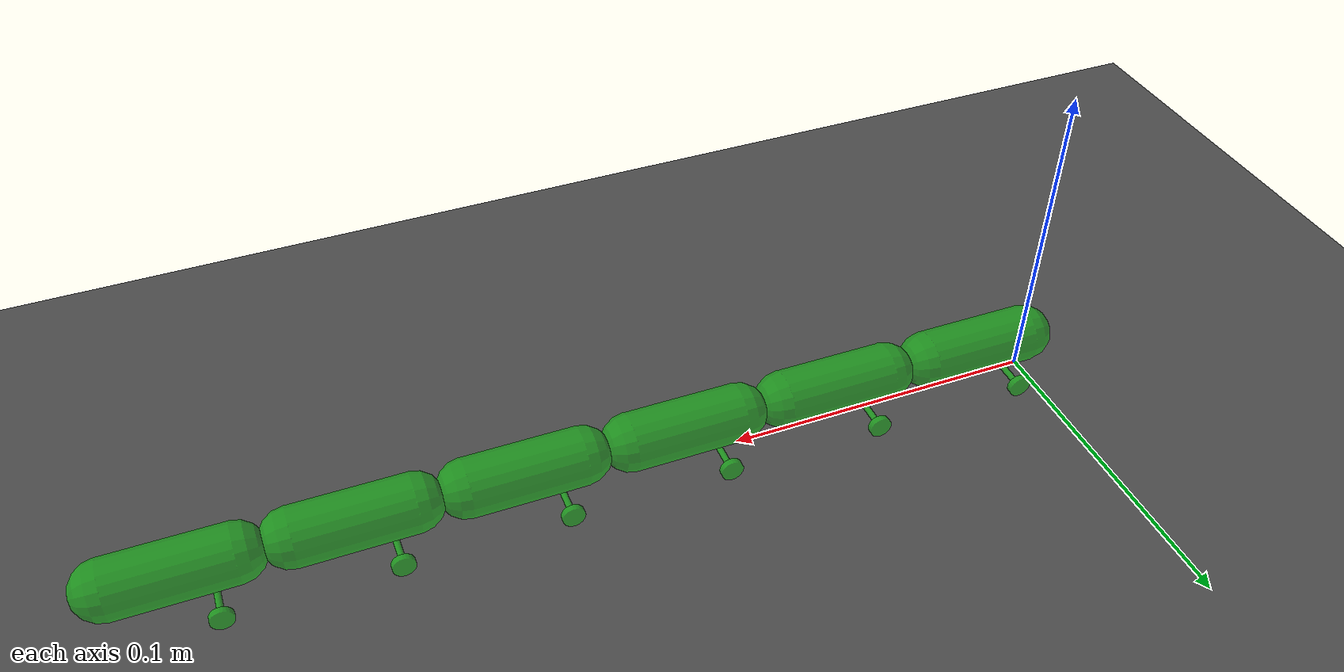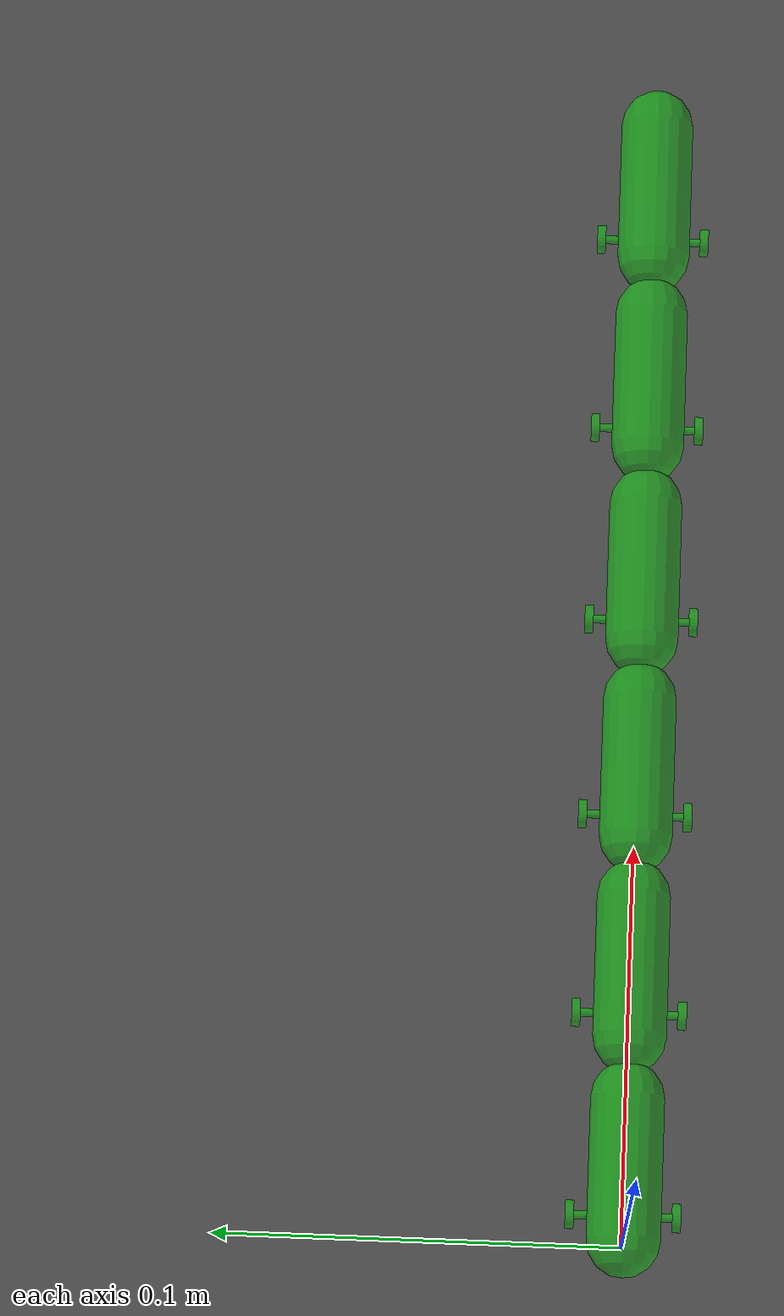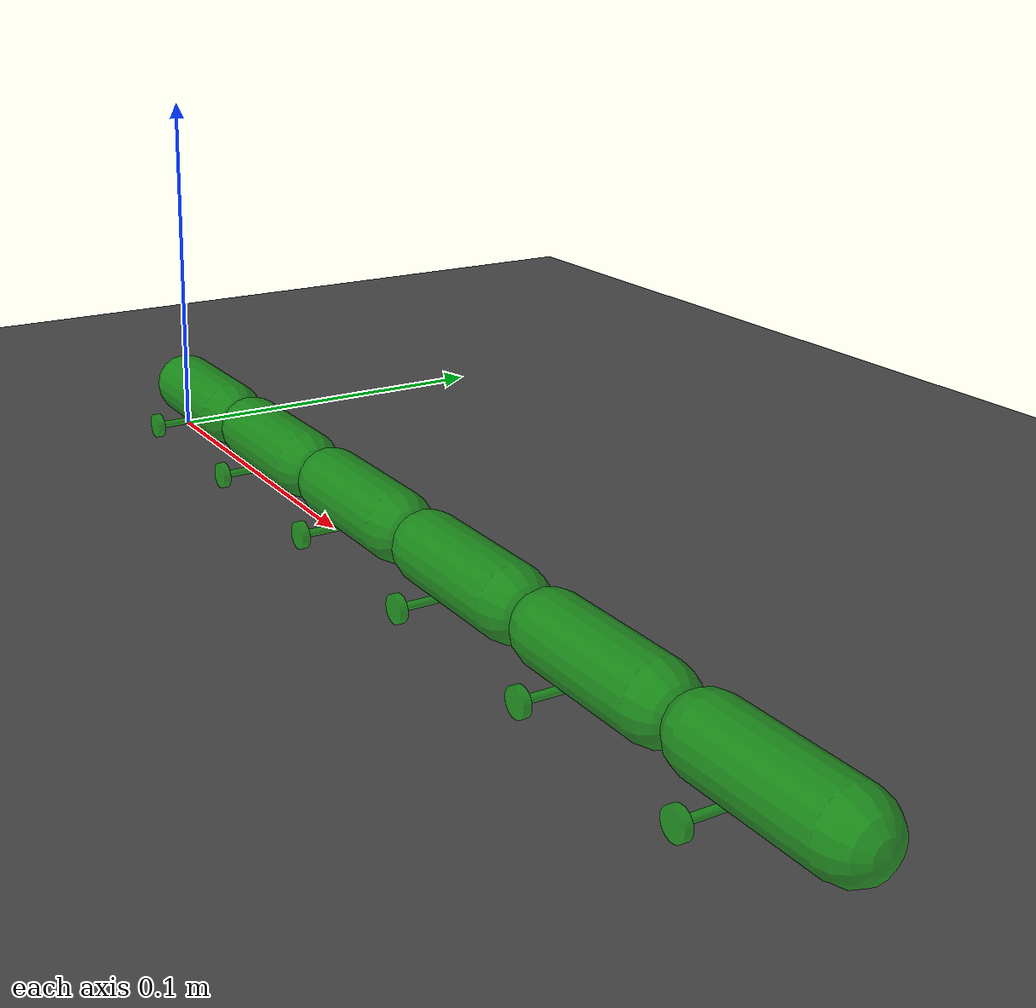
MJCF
<mujoco model="snake">
  <compiler angle="radian" meshdir="assets" autolimits="true"/>

  <option integrator="implicitfast"/>

  <default>
    <geom friction="3 3 3" density="7856" rgba="0 .9 0 .5" /> <!-- Плотность стали 10 по ГОСТ -->

    <default class="snake_body_segment">
      <geom type="capsule" size=".009"  fromto="0 0 .013 .035 0 .013"/>
    </default>

    <default class="wheel_body">
      <geom type="cylinder" size=".0035" />
    </default>

    <default class="wheel_joint">
     <joint pos=".0075 0.005 .0035" axis="0 1 0" limited="false"/>
    </default>

    <default class="wheel_axle">
      <geom type="cylinder" size=".001" fromto= ".0075 -.012 .0035 .0075 .012 .0035"/>
    </default>

    <default class="actuator_joint">
      <joint pos="0 0 0" axis="0 0 1" limited="true" range="-3 3"/>
    </default>

  </default>

  <worldbody>
    <light name="light" mode="targetbodycom" target="seg_1" pos="0 -1 2"/>
    <!-- Floor -->
    <geom type="plane" size="1000 1000 0.1" rgba=".3 .3 .3 1"/>

    <!-- Snake's head -->
    <body name="seg_1" pos="0 0 0">

      <camera name="camera" mode="trackcom" pos="0 0 0" xyaxes="-1 0 0 0 -1 1"/>

      <joint type="free"/>
      <geom name="head" class="snake_body_segment"/>

      <body name="wheels_1" pos="0 0 0">
        <joint class="wheel_joint"/>
        <geom class="wheel_body" fromto=".0075 -.014 .0035 .0075 -.012 .0035"/>
        <geom class="wheel_body" fromto=".0075 .014 .0035 .0075 .012 .0035"/>
        <geom class="wheel_axle"/>
      </body>

      <body name="seg_2" pos="0.05 0 0">
        <joint name="Actuator1" class="actuator_joint"/>
        <geom class="snake_body_segment" />

        <body name="wheels_2">
          <joint class="wheel_joint"/>
          <geom class="wheel_body" fromto=".0075 -.014 .0035 .0075 -.012 .0035"/>
          <geom class="wheel_body" fromto=".0075 .014 .0035 .0075 .012 .0035"/>
          <geom class="wheel_axle"/>
        </body>

        <body name="seg_3" pos="0.05 0 0">
          <joint name="Actuator2" class="actuator_joint"/>
          <geom class="snake_body_segment"/>

          <body name="wheels_3">
            <joint class="wheel_joint"/>
            <geom class="wheel_body" fromto=".0075 -.014 .0035 .0075 -.012 .0035"/>
            <geom class="wheel_body" fromto=".0075 .014 .0035 .0075 .012 .0035"/>
            <geom class="wheel_axle"/>
          </body>

          <body name="seg_4" pos="0.05 0 0">
            <joint name="Actuator3" class="actuator_joint"/>
            <geom class="snake_body_segment"/>

            <body name="wheels_4">
              <joint class="wheel_joint"/>
              <geom class="wheel_body" fromto=".0075 -.014 .0035 .0075 -.012 .0035"/>
              <geom class="wheel_body" fromto=".0075 .014 .0035 .0075 .012 .0035"/>
              <geom class="wheel_axle"/>
            </body>

            <body name="seg_5" pos="0.05 0 0">
              <joint name="Actuator4" class="actuator_joint"/>
              <geom class="snake_body_segment"/>

              <body name="wheels_5">
                <joint class="wheel_joint"/>
                <geom class="wheel_body" fromto=".0075 -.014 .0035 .0075 -.012 .0035"/>
                <geom class="wheel_body" fromto=".0075 .014 .0035 .0075 .012 .0035"/>
                <geom class="wheel_axle"/>
              </body>

              <body name="seg_6" pos="0.05 0 0">
                <joint name="Actuator5" class="actuator_joint"/>
                <geom class="snake_body_segment"/>

                <body  name="wheels_6">
                  <joint class="wheel_joint"/>
                  <geom class="wheel_body" fromto=".0075 -.014 .0035 .0075 -.012 .0035"/>
                  <geom class="wheel_body" fromto=".0075 .014 .0035 .0075 .012 .0035"/>
                  <geom class="wheel_axle"/>
                </body>
              </body>
            </body>
          </body>
        </body>
      </body>
    </body>
  </worldbody>

  <actuator>
    <position name="Actuator1" joint="Actuator1" kp = "1" ctrllimited="true" ctrlrange="-3 3"/>
    <position name="Actuator2" joint="Actuator2" kp = "1" ctrllimited="true" ctrlrange="-3 3"/>
    <position name="Actuator3" joint="Actuator3" kp = "1" ctrllimited="true" ctrlrange="-3 3"/>
    <position name="Actuator4" joint="Actuator4" kp = "1" ctrllimited="true" ctrlrange="-3 3"/>
    <position name="Actuator5" joint="Actuator5" kp = "1" ctrllimited="true" ctrlrange="-3 3"/>
  </actuator>
</mujoco>
